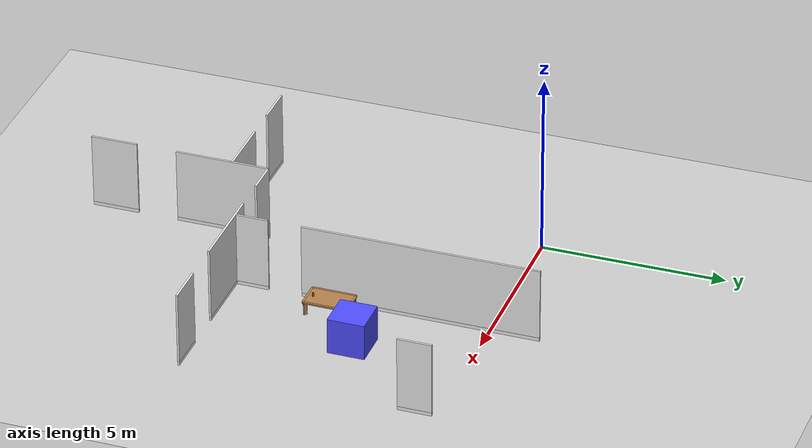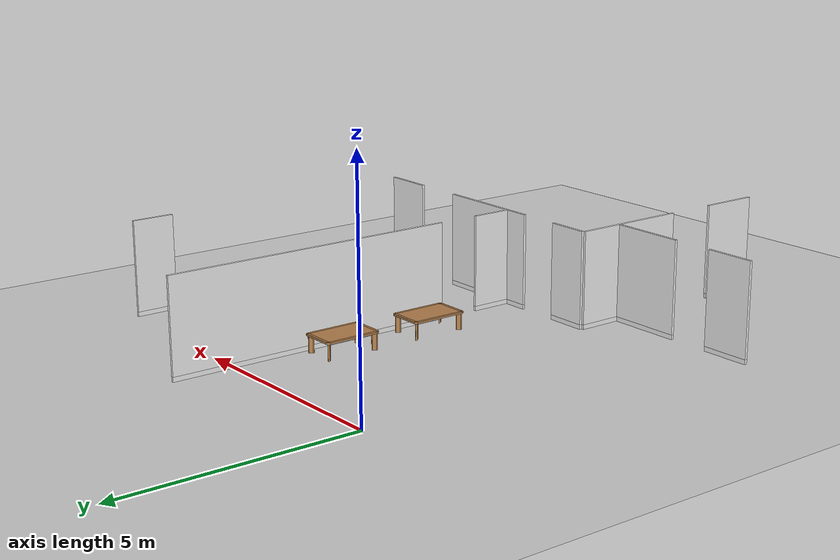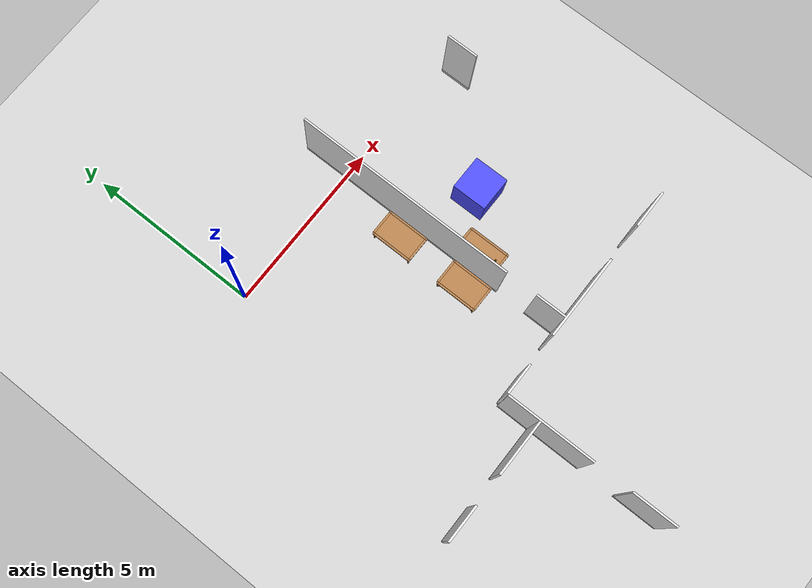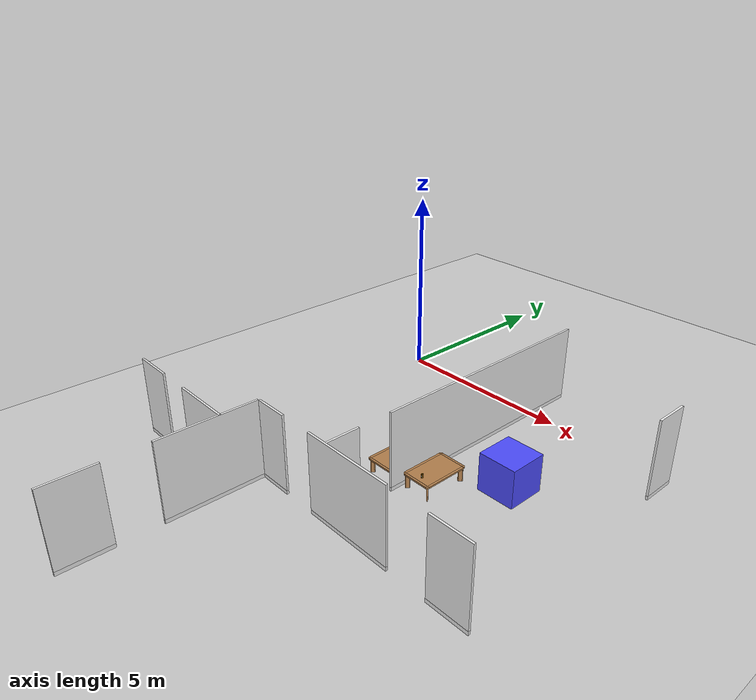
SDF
<sdf version="1.6">
 <world name="default">
  <model name="ground_plane">
   <static>1</static>
   <link name="link">
    <collision name="collision">
     <geometry><plane><normal>0 0 1</normal><size>100 100</size></plane></geometry>
     <surface><friction><ode><mu>100</mu><mu2>50</mu2></ode></friction></surface>
    </collision>
    <visual name="visual">
     <cast_shadows>0</cast_shadows>
     <geometry><plane><normal>0 0 1</normal><size>100 100</size></plane></geometry>
     <material>
      <script><uri>file://media/materials/scripts/gazebo.material</uri><name>Gazebo/Grey</name></script>
     </material>
    </visual>
   </link>
  </model>
  <model name="full_inside_wall">
   <link name="link">
    <inertial>
     <mass>50</mass>
     <inertia><ixx>1</ixx><ixy>0</ixy><ixz>0</ixz><iyy>1</iyy><iyz>0</iyz><izz>1</izz></inertia>
    </inertial>
    <visual name="x05y01_08_bottom_frame">
     <pose>4.075 3.215 0.05 0 -0 0</pose>
     <geometry><box><size>0.055 6.43 0.1</size></box></geometry>
     <material>
      <script><uri>model://base_materials/color/scripts</uri><name>hsr_color/white</name></script>
     </material>
    </visual>
    <collision name="x05y01_08_collision_bottom_frame">
     <pose>4.075 3.215 0.05 0 -0 0</pose>
     <geometry><box><size>0.055 6.43 0.1</size></box></geometry>
    </collision>
    <visual name="x05y01_08_wall">
     <pose>4.075 3.215 1.095 0 -0 0</pose>
     <geometry><box><size>0.055 6.43 1.99</size></box></geometry>
     <material>
      <script>
       <uri>model://base_materials/wall/scripts</uri>
       <uri>model://base_materials/wall/textures</uri>
       <name>wall/white_noise</name>
      </script>
     </material>
    </visual>
    <collision name="x05y01_08_collision_wall">
     <pose>4.075 3.215 1.095 0 -0 0</pose>
     <geometry><box><size>0.055 6.43 1.99</size></box></geometry>
    </collision>
    <visual name="x05y10_bottom_frame">
     <pose>4.075 7.78 0.05 0 -0 0</pose>
     <geometry><box><size>0.055 0.9 0.1</size></box></geometry>
     <material>
      <script><uri>model://base_materials/color/scripts</uri><name>hsr_color/white</name></script>
     </material>
    </visual>
    <collision name="x05y10_collision_bottom_frame">
     <pose>4.075 7.78 0.05 0 -0 0</pose>
     <geometry><box><size>0.055 0.9 0.1</size></box></geometry>
    </collision>
    <visual name="x05y10_wall">
     <pose>4.075 7.78 1.095 0 -0 0</pose>
     <geometry><box><size>0.055 0.9 1.99</size></box></geometry>
     <material>
      <script>
       <uri>model://base_materials/wall/scripts</uri>
       <uri>model://base_materials/wall/textures</uri>
       <name>wall/white_noise</name>
      </script>
     </material>
    </visual>
    <collision name="x05y10_collision_wall">
     <pose>4.075 7.78 1.095 0 -0 0</pose>
     <geometry><box><size>0.055 0.9 1.99</size></box></geometry>
    </collision>
    <visual name="x01_02_y09_bottom_frame">
     <pose>0.55 8.23 0.05 0 -0 1.5708</pose>
     <geometry><box><size>0.055 1.1 0.1</size></box></geometry>
     <material>
      <script><uri>model://base_materials/color/scripts</uri><name>hsr_color/white</name></script>
     </material>
    </visual>
    <collision name="x01_02_y09_collision_bottom_frame">
     <pose>0.55 8.23 0.05 0 -0 1.5708</pose>
     <geometry><box><size>0.055 1.1 0.1</size></box></geometry>
    </collision>
    <visual name="x01_02_y09_wall">
     <pose>0.55 8.23 1.095 0 -0 1.5708</pose>
     <geometry><box><size>0.055 1.1 1.99</size></box></geometry>
     <material>
      <script>
       <uri>model://base_materials/wall/scripts</uri>
       <uri>model://base_materials/wall/textures</uri>
       <name>wall/white_noise</name>
      </script>
     </material>
    </visual>
    <collision name="x01_02_y09_collision_wall">
     <pose>0.55 8.23 1.095 0 -0 1.5708</pose>
     <geometry><box><size>0.055 1.1 1.99</size></box></geometry>
    </collision>
    <visual name="x04_07_y09_bottom_frame">
     <pose>3.42 8.23 0.05 0 -0 1.5708</pose>
     <geometry><box><size>0.055 2.44 0.1</size></box></geometry>
     <material>
      <script><uri>model://base_materials/color/scripts</uri><name>hsr_color/white</name></script>
     </material>
    </visual>
    <collision name="x04_07_y09_collision_bottom_frame">
     <pose>3.42 8.23 0.05 0 -0 1.5708</pose>
     <geometry><box><size>0.055 2.44 0.1</size></box></geometry>
    </collision>
    <visual name="x04_07_y09_wall">
     <pose>3.42 8.23 1.095 0 -0 1.5708</pose>
     <geometry><box><size>0.055 2.44 1.99</size></box></geometry>
     <material>
      <script>
       <uri>model://base_materials/wall/scripts</uri>
       <uri>model://base_materials/wall/textures</uri>
       <name>wall/white_noise</name>
      </script>
     </material>
    </visual>
    <collision name="x04_07_y09_collision_wall">
     <pose>3.42 8.23 1.095 0 -0 1.5708</pose>
     <geometry><box><size>0.055 2.44 1.99</size></box></geometry>
    </collision>
    <visual name="x08y10a_bottom_frame">
     <pose>5.9925 8.23 0.05 0 -0 1.5708</pose>
     <geometry><box><size>0.055 0.9 0.1</size></box></geometry>
     <material>
      <script><uri>model://base_materials/color/scripts</uri><name>hsr_color/white</name></script>
     </material>
    </visual>
    <collision name="x08y10a_collision_bottom_frame">
     <pose>5.9925 8.23 0.05 0 -0 1.5708</pose>
     <geometry><box><size>0.055 0.9 0.1</size></box></geometry>
    </collision>
    <visual name="x08y10a_wall">
     <pose>5.9925 8.23 1.095 0 -0 1.5708</pose>
     <geometry><box><size>0.055 0.9 1.99</size></box></geometry>
     <material>
      <script>
       <uri>model://base_materials/wall/scripts</uri>
       <uri>model://base_materials/wall/textures</uri>
       <name>wall/white_noise</name>
      </script>
     </material>
    </visual>
    <collision name="x08y10a_collision_wall">
     <pose>5.9925 8.23 1.095 0 -0 1.5708</pose>
     <geometry><box><size>0.055 0.9 1.99</size></box></geometry>
    </collision>
    <visual name="x08y10a_bottom_frame">
     <pose>5.9925 8.23 0.05 0 -0 1.5708</pose>
     <geometry><box><size>0.055 0.9 0.1</size></box></geometry>
     <material>
      <script><uri>model://base_materials/color/scripts</uri><name>hsr_color/white</name></script>
     </material>
    </visual>
    <collision name="x08y10a_collision_bottom_frame">
     <pose>5.9925 8.23 0.05 0 -0 1.5708</pose>
     <geometry><box><size>0.055 0.9 0.1</size></box></geometry>
    </collision>
    <visual name="x08y10a_wall">
     <pose>5.9925 8.23 1.095 0 -0 1.5708</pose>
     <geometry><box><size>0.055 0.9 1.99</size></box></geometry>
     <material>
      <script>
       <uri>model://base_materials/wall/scripts</uri>
       <uri>model://base_materials/wall/textures</uri>
       <name>wall/white_noise</name>
      </script>
     </material>
    </visual>
    <collision name="x08y10a_collision_wall">
     <pose>5.9925 8.23 1.095 0 -0 1.5708</pose>
     <geometry><box><size>0.055 0.9 1.99</size></box></geometry>
    </collision>
    <visual name="x08y14_15_bottom_frame">
     <pose>6.47 12.54 0.05 0 -0 0</pose>
     <geometry><box><size>0.055 1.28 0.1</size></box></geometry>
     <material>
      <script><uri>model://base_materials/color/scripts</uri><name>hsr_color/white</name></script>
     </material>
    </visual>
    <collision name="x08y14_15_collision_bottom_frame">
     <pose>6.47 12.54 0.05 0 -0 0</pose>
     <geometry><box><size>0.055 1.28 0.1</size></box></geometry>
    </collision>
    <visual name="x08y14_15_wall">
     <pose>6.47 12.54 1.095 0 -0 0</pose>
     <geometry><box><size>0.055 1.28 1.99</size></box></geometry>
     <material>
      <script>
       <uri>model://base_materials/wall/scripts</uri>
       <uri>model://base_materials/wall/textures</uri>
       <name>wall/white_noise</name>
      </script>
     </material>
    </visual>
    <collision name="x08y14_15_collision_wall">
     <pose>6.47 12.54 1.095 0 -0 0</pose>
     <geometry><box><size>0.055 1.28 1.99</size></box></geometry>
    </collision>
    <visual name="x08y10b_12_bottom_frame">
     <pose>6.47 9.52875 0.05 0 -0 0</pose>
     <geometry><box><size>0.055 2.5425 0.1</size></box></geometry>
     <material>
      <script><uri>model://base_materials/color/scripts</uri><name>hsr_color/white</name></script>
     </material>
    </visual>
    <collision name="x08y10b_12_collision_bottom_frame">
     <pose>6.47 9.52875 0.05 0 -0 0</pose>
     <geometry><box><size>0.055 2.5425 0.1</size></box></geometry>
    </collision>
    <visual name="x08y10b_12_wall">
     <pose>6.47 9.52875 1.095 0 -0 0</pose>
     <geometry><box><size>0.055 2.5425 1.99</size></box></geometry>
     <material>
      <script>
       <uri>model://base_materials/wall/scripts</uri>
       <uri>model://base_materials/wall/textures</uri>
       <name>wall/white_noise</name>
      </script>
     </material>
    </visual>
    <collision name="x08y10b_12_collision_wall">
     <pose>6.47 9.52875 1.095 0 -0 0</pose>
     <geometry><box><size>0.055 2.5425 1.99</size></box></geometry>
    </collision>
    <visual name="x08_09y11b_bottom_frame">
     <pose>7.284 9.23 0.05 0 -0 1.5708</pose>
     <geometry><box><size>0.055 1.632 0.1</size></box></geometry>
     <material>
      <script><uri>model://base_materials/color/scripts</uri><name>hsr_color/white</name></script>
     </material>
    </visual>
    <collision name="x08_09y11b_collision_bottom_frame">
     <pose>7.284 9.23 0.05 0 -0 1.5708</pose>
     <geometry><box><size>0.055 1.632 0.1</size></box></geometry>
    </collision>
    <visual name="x08_09y11b_wall">
     <pose>7.284 9.23 1.095 0 -0 1.5708</pose>
     <geometry><box><size>0.055 1.632 1.99</size></box></geometry>
     <material>
      <script>
       <uri>model://base_materials/wall/scripts</uri>
       <uri>model://base_materials/wall/textures</uri>
       <name>wall/white_noise</name>
      </script>
     </material>
    </visual>
    <collision name="x08_09y11b_collision_wall">
     <pose>7.284 9.23 1.095 0 -0 1.5708</pose>
     <geometry><box><size>0.055 1.632 1.99</size></box></geometry>
    </collision>
    <visual name="x11_12y11_bottom_frame">
     <pose>9.5375 9.23 0.05 0 -0 1.5708</pose>
     <geometry><box><size>0.055 1.075 0.1</size></box></geometry>
     <material>
      <script><uri>model://base_materials/color/scripts</uri><name>hsr_color/white</name></script>
     </material>
    </visual>
    <collision name="x11_12y11_collision_bottom_frame">
     <pose>9.5375 9.23 0.05 0 -0 1.5708</pose>
     <geometry><box><size>0.055 1.075 0.1</size></box></geometry>
    </collision>
    <visual name="x11_12y11_wall">
     <pose>9.5375 9.23 1.095 0 -0 1.5708</pose>
     <geometry><box><size>0.055 1.075 1.99</size></box></geometry>
     <material>
      <script>
       <uri>model://base_materials/wall/scripts</uri>
       <uri>model://base_materials/wall/textures</uri>
       <name>wall/white_noise</name>
      </script>
     </material>
    </visual>
    <collision name="x11_12y11_collision_wall">
     <pose>9.5375 9.23 1.095 0 -0 1.5708</pose>
     <geometry><box><size>0.055 1.075 1.99</size></box></geometry>
    </collision>
    <velocity_decay><linear>0</linear><angular>0</angular></velocity_decay>
   </link>
   <static>1</static>
   <pose>8.33769 1.33864 0 0 -0 3.14132</pose>
  </model>
  <model name="static_box_2">
   <link name="link">
    <inertial>
     <mass>100</mass>
     <inertia>
      <ixx>0.166667</ixx>
      <ixy>0</ixy>
      <ixz>0</ixz>
      <iyy>0.166667</iyy>
      <iyz>0</iyz>
      <izz>0.166667</izz>
     </inertia>
    </inertial>
    <visual name="visual">
     <geometry><box><size>1 1 1</size></box></geometry>
     <material>
      <script><name>Gazebo/Grey</name><uri>file://media/materials/scripts/gazebo.material</uri></script>
      <ambient>0.3 0.3 1 1</ambient>
      <diffuse>0.7 0.7 0.7 1</diffuse>
      <specular>0.01 0.01 0.01 1</specular>
      <emissive>0 0 0 1</emissive>
      <shader type="vertex"><normal_map>__default__</normal_map></shader>
     </material>
    </visual>
    <collision name="collision">
     <geometry><box><size>1 1 1</size></box></geometry>
     <surface>
      <friction>
       <ode><mu>1</mu><mu2>1</mu2><fdir1>0 0 0</fdir1><slip1>0</slip1><slip2>0</slip2></ode>
       <torsional>
        <coefficient>1</coefficient>
        <patch_radius>0</patch_radius>
        <surface_radius>0</surface_radius>
        <use_patch_radius>1</use_patch_radius>
        <ode><slip>0</slip></ode>
       </torsional>
      </friction>
      <bounce><restitution_coefficient>0</restitution_coefficient><threshold>1e+06</threshold></bounce>
      <contact>
       <collide_without_contact>0</collide_without_contact>
       <collide_without_contact_bitmask>1</collide_without_contact_bitmask>
       <collide_bitmask>1</collide_bitmask>
       <ode>
        <soft_cfm>0</soft_cfm>
        <soft_erp>0.2</soft_erp>
        <kp>1e+13</kp>
        <kd>1</kd>
        <max_vel>0.01</max_vel>
        <min_depth>0</min_depth>
       </ode>
       <bullet>
        <split_impulse>1</split_impulse>
        <split_impulse_penetration_threshold>-0.01</split_impulse_penetration_threshold>
        <soft_cfm>0</soft_cfm>
        <soft_erp>0.2</soft_erp>
        <kp>1e+13</kp>
        <kd>1</kd>
       </bullet>
      </contact>
     </surface>
    </collision>
   </link>
   <static>0</static>
   <pose>6.05367 -3.06141 0.499993 -0 -9e-06 0.001268</pose>
  </model>
  <model name="full_wall_55_920_2090">
   <link name="link">
    <inertial>
     <mass>50</mass>
     <inertia><ixx>1</ixx><ixy>0</ixy><ixz>0</ixz><iyy>1</iyy><iyz>0</iyz><izz>1</izz></inertia>
    </inertial>
    <visual name="bottom_frame">
     <pose>0 0 0.05 0 -0 0</pose>
     <geometry><box><size>0.055 0.92 0.1</size></box></geometry>
     <material>
      <script><uri>model://base_materials/color/scripts</uri><name>hsr_color/white</name></script>
     </material>
    </visual>
    <collision name="collision_bottom_frame">
     <pose>0 0 0.05 0 -0 0</pose>
     <geometry><box><size>0.055 0.92 0.1</size></box></geometry>
    </collision>
    <visual name="wall">
     <pose>0 0 1.095 0 -0 0</pose>
     <geometry><box><size>0.055 0.92 1.99</size></box></geometry>
     <material>
      <script>
       <uri>model://base_materials/wall/scripts</uri>
       <uri>model://base_materials/wall/textures</uri>
       <name>wall/white_noise</name>
      </script>
     </material>
    </visual>
    <collision name="collision_wall">
     <pose>0 0 1.095 0 -0 0</pose>
     <geometry><box><size>0.055 0.92 1.99</size></box></geometry>
    </collision>
    <velocity_decay><linear>0</linear><angular>0</angular></velocity_decay>
   </link>
   <static>1</static>
   <pose>8.36232 -0.582065 0 0 -0 0</pose>
  </model>
  <model name="kitchen_lowtable_clone_0">
   <link name="link">
    <inertial>
     <mass>10</mass>
     <inertia><ixx>1</ixx><ixy>0</ixy><ixz>0</ixz><iyy>1</iyy><iyz>0</iyz><izz>1</izz></inertia>
    </inertial>
    <visual name="center_board">
     <pose>0 0 0.38 0 -0 0</pose>
     <geometry><box><size>0.68 1.13 0.04</size></box></geometry>
     <material>
      <script><uri>model://base_materials/wood/scripts/wood.material</uri><name>base_materials/wood</name></script>
     </material>
    </visual>
    <collision name="collision_center_board">
     <pose>0 0 0.38 0 -0 0</pose>
     <geometry><box><size>0.68 1.13 0.04</size></box></geometry>
    </collision>
    <visual name="front_board">
     <pose>0.37 0 0.38 0 -0 0</pose>
     <geometry><box><size>0.06 1.13 0.04</size></box></geometry>
     <material>
      <script><uri>model://base_materials/wood/scripts/wood.material</uri><name>base_materials/wood</name></script>
     </material>
    </visual>
    <collision name="collision_front_board">
     <pose>0.37 0 0.38 0 -0 0</pose>
     <geometry><box><size>0.06 1.13 0.04</size></box></geometry>
    </collision>
    <visual name="back_board">
     <pose>-0.37 0 0.38 0 -0 0</pose>
     <geometry><box><size>0.06 1.13 0.04</size></box></geometry>
     <material>
      <script><uri>model://base_materials/wood/scripts/wood.material</uri><name>base_materials/wood</name></script>
     </material>
    </visual>
    <collision name="collision_back_board">
     <pose>-0.37 0 0.38 0 -0 0</pose>
     <geometry><box><size>0.06 1.13 0.04</size></box></geometry>
    </collision>
    <visual name="right_board">
     <pose>0 0.595 0.38 0 -0 0</pose>
     <geometry><box><size>0.68 0.06 0.04</size></box></geometry>
     <material>
      <script><uri>model://base_materials/wood/scripts/wood.material</uri><name>base_materials/wood</name></script>
     </material>
    </visual>
    <collision name="collision_right_board">
     <pose>0 0.595 0.38 0 -0 0</pose>
     <geometry><box><size>0.68 0.06 0.04</size></box></geometry>
    </collision>
    <visual name="left_board">
     <pose>0 -0.595 0.38 0 -0 0</pose>
     <geometry><box><size>0.68 0.06 0.04</size></box></geometry>
     <material>
      <script><uri>model://base_materials/wood/scripts/wood.material</uri><name>base_materials/wood</name></script>
     </material>
    </visual>
    <collision name="collision_left_board">
     <pose>0 -0.595 0.38 0 -0 0</pose>
     <geometry><box><size>0.68 0.06 0.04</size></box></geometry>
    </collision>
    <visual name="front_right_corner_board">
     <pose>0.34 0.565 0.38 0 -0 0</pose>
     <geometry><cylinder><radius>0.06</radius><length>0.039</length></cylinder></geometry>
     <material>
      <script><uri>model://base_materials/wood/scripts/wood.material</uri><name>base_materials/wood</name></script>
     </material>
    </visual>
    <collision name="collision_front_right_corner_board">
     <pose>0.34 0.565 0.38 0 -0 0</pose>
     <geometry><cylinder><radius>0.06</radius><length>0.039</length></cylinder></geometry>
    </collision>
    <visual name="front_left_corner_board">
     <pose>0.34 -0.565 0.38 0 -0 0</pose>
     <geometry><cylinder><radius>0.06</radius><length>0.039</length></cylinder></geometry>
     <material>
      <script><uri>model://base_materials/wood/scripts/wood.material</uri><name>base_materials/wood</name></script>
     </material>
    </visual>
    <collision name="collision_front_left_corner_board">
     <pose>0.34 -0.565 0.38 0 -0 0</pose>
     <geometry><cylinder><radius>0.06</radius><length>0.039</length></cylinder></geometry>
    </collision>
    <visual name="front_back_right_corner_board">
     <pose>-0.34 0.565 0.38 0 -0 0</pose>
     <geometry><cylinder><radius>0.06</radius><length>0.039</length></cylinder></geometry>
     <material>
      <script><uri>model://base_materials/wood/scripts/wood.material</uri><name>base_materials/wood</name></script>
     </material>
    </visual>
    <collision name="collision_back_right_corner_board">
     <pose>-0.34 0.565 0.38 0 -0 0</pose>
     <geometry><cylinder><radius>0.06</radius><length>0.039</length></cylinder></geometry>
    </collision>
    <visual name="front_back_left_corner_board">
     <pose>-0.34 -0.565 0.38 0 -0 0</pose>
     <geometry><cylinder><radius>0.06</radius><length>0.039</length></cylinder></geometry>
     <material>
      <script><uri>model://base_materials/wood/scripts/wood.material</uri><name>base_materials/wood</name></script>
     </material>
    </visual>
    <collision name="collision_back_left_corner_board">
     <pose>-0.34 -0.565 0.38 0 -0 0</pose>
     <geometry><cylinder><radius>0.06</radius><length>0.039</length></cylinder></geometry>
    </collision>
    <visual name="front_left_corner_frame1">
     <pose>0.345858 -0.57086 0.18 0 -0 0</pose>
     <geometry><cylinder><radius>0.02</radius><length>0.36</length></cylinder></geometry>
     <material>
      <script><uri>model://base_materials/wood/scripts/wood.material</uri><name>base_materials/wood</name></script>
     </material>
    </visual>
    <collision name="collision_front_left_corner_frame1">
     <pose>0.345858 -0.57086 0.18 0 -0 0</pose>
     <geometry><cylinder><radius>0.02</radius><length>0.36</length></cylinder></geometry>
    </collision>
    <visual name="front_left_corner_frame2">
     <pose>0.317574 -0.54257 0.18 0 -0 0.7854</pose>
     <geometry><box><size>0.04 0.08 0.36</size></box></geometry>
     <material>
      <script><uri>model://base_materials/wood/scripts/wood.material</uri><name>base_materials/wood</name></script>
     </material>
    </visual>
    <collision name="collision_front_left_corner_frame2">
     <pose>0.317574 -0.54257 0.18 0 -0 0.7854</pose>
     <geometry><box><size>0.04 0.08 0.36</size></box></geometry>
    </collision>
    <visual name="front_left_corner_frame3">
     <pose>0.289289 -0.51429 0.18 0 -0 0</pose>
     <geometry><cylinder><radius>0.02</radius><length>0.36</length></cylinder></geometry>
     <material>
      <script><uri>model://base_materials/wood/scripts/wood.material</uri><name>base_materials/wood</name></script>
     </material>
    </visual>
    <collision name="collision_front_left_corner_frame3">
     <pose>0.289289 -0.51429 0.18 0 -0 0</pose>
     <geometry><cylinder><radius>0.02</radius><length>0.36</length></cylinder></geometry>
    </collision>
    <visual name="front_right_corner_frame1">
     <pose>0.345858 0.57086 0.18 0 -0 0</pose>
     <geometry><cylinder><radius>0.02</radius><length>0.36</length></cylinder></geometry>
     <material>
      <script><uri>model://base_materials/wood/scripts/wood.material</uri><name>base_materials/wood</name></script>
     </material>
    </visual>
    <collision name="collision_front_right_corner_frame1">
     <pose>0.345858 0.57086 0.18 0 -0 0</pose>
     <geometry><cylinder><radius>0.02</radius><length>0.36</length></cylinder></geometry>
    </collision>
    <visual name="front_right_corner_frame2">
     <pose>0.317574 0.54257 0.18 0 0 -0.7854</pose>
     <geometry><box><size>0.04 0.08 0.36</size></box></geometry>
     <material>
      <script><uri>model://base_materials/wood/scripts/wood.material</uri><name>base_materials/wood</name></script>
     </material>
    </visual>
    <collision name="collision_front_right_corner_frame2">
     <pose>0.317574 0.54257 0.18 0 0 -0.7854</pose>
     <geometry><box><size>0.04 0.08 0.36</size></box></geometry>
    </collision>
    <visual name="front_right_corner_frame3">
     <pose>0.289289 0.51429 0.18 0 -0 0</pose>
     <geometry><cylinder><radius>0.02</radius><length>0.36</length></cylinder></geometry>
     <material>
      <script><uri>model://base_materials/wood/scripts/wood.material</uri><name>base_materials/wood</name></script>
     </material>
    </visual>
    <collision name="collision_front_right_corner_frame3">
     <pose>0.289289 0.51429 0.18 0 -0 0</pose>
     <geometry><cylinder><radius>0.02</radius><length>0.36</length></cylinder></geometry>
    </collision>
    <visual name="back_left_corner_frame1">
     <pose>-0.345858 -0.57086 0.18 0 -0 0</pose>
     <geometry><cylinder><radius>0.02</radius><length>0.36</length></cylinder></geometry>
     <material>
      <script><uri>model://base_materials/wood/scripts/wood.material</uri><name>base_materials/wood</name></script>
     </material>
    </visual>
    <collision name="collision_back_left_corner_frame1">
     <pose>-0.345858 -0.57086 0.18 0 -0 0</pose>
     <geometry><cylinder><radius>0.02</radius><length>0.36</length></cylinder></geometry>
    </collision>
    <visual name="back_left_corner_frame2">
     <pose>-0.317574 -0.54257 0.18 0 0 -0.7854</pose>
     <geometry><box><size>0.04 0.08 0.36</size></box></geometry>
     <material>
      <script><uri>model://base_materials/wood/scripts/wood.material</uri><name>base_materials/wood</name></script>
     </material>
    </visual>
    <collision name="collision_back_left_corner_frame2">
     <pose>-0.317574 -0.54257 0.18 0 0 -0.7854</pose>
     <geometry><box><size>0.04 0.08 0.36</size></box></geometry>
    </collision>
    <visual name="back_left_corner_frame3">
     <pose>-0.289289 -0.51429 0.18 0 -0 0</pose>
     <geometry><cylinder><radius>0.02</radius><length>0.36</length></cylinder></geometry>
     <material>
      <script><uri>model://base_materials/wood/scripts/wood.material</uri><name>base_materials/wood</name></script>
     </material>
    </visual>
    <collision name="collision_back_left_corner_frame3">
     <pose>-0.289289 -0.51429 0.18 0 -0 0</pose>
     <geometry><cylinder><radius>0.02</radius><length>0.36</length></cylinder></geometry>
    </collision>
    <visual name="back_right_corner_frame1">
     <pose>-0.345858 0.57086 0.18 0 -0 0</pose>
     <geometry><cylinder><radius>0.02</radius><length>0.36</length></cylinder></geometry>
     <material>
      <script><uri>model://base_materials/wood/scripts/wood.material</uri><name>base_materials/wood</name></script>
     </material>
    </visual>
    <collision name="collision_back_right_corner_frame1">
     <pose>-0.345858 0.57086 0.18 0 -0 0</pose>
     <geometry><cylinder><radius>0.02</radius><length>0.36</length></cylinder></geometry>
    </collision>
    <visual name="back_right_corner_frame2">
     <pose>-0.317574 0.54257 0.18 0 -0 0.7854</pose>
     <geometry><box><size>0.04 0.08 0.36</size></box></geometry>
     <material>
      <script><uri>model://base_materials/wood/scripts/wood.material</uri><name>base_materials/wood</name></script>
     </material>
    </visual>
    <collision name="collision_back_right_corner_frame2">
     <pose>-0.317574 0.54257 0.18 0 -0 0.7854</pose>
     <geometry><box><size>0.04 0.08 0.36</size></box></geometry>
    </collision>
    <visual name="back_right_corner_frame3">
     <pose>-0.289289 0.51429 0.18 0 -0 0</pose>
     <geometry><cylinder><radius>0.02</radius><length>0.36</length></cylinder></geometry>
     <material>
      <script><uri>model://base_materials/wood/scripts/wood.material</uri><name>base_materials/wood</name></script>
     </material>
    </visual>
    <collision name="collision_back_right_corner_frame3">
     <pose>-0.289289 0.51429 0.18 0 -0 0</pose>
     <geometry><cylinder><radius>0.02</radius><length>0.36</length></cylinder></geometry>
    </collision>
    <velocity_decay><linear>0</linear><angular>0</angular></velocity_decay>
   </link>
   <static>1</static>
   <pose>3.75431 -4.34988 0 0 -0 0</pose>
  </model>
  <model name="kitchen_lowtable_clone_6">
   <link name="link">
    <inertial>
     <mass>10</mass>
     <inertia><ixx>1</ixx><ixy>0</ixy><ixz>0</ixz><iyy>1</iyy><iyz>0</iyz><izz>1</izz></inertia>
    </inertial>
    <visual name="center_board">
     <pose>0 0 0.38 0 -0 0</pose>
     <geometry><box><size>0.68 1.13 0.04</size></box></geometry>
     <material>
      <script><uri>model://base_materials/wood/scripts/wood.material</uri><name>base_materials/wood</name></script>
     </material>
    </visual>
    <collision name="collision_center_board">
     <pose>0 0 0.38 0 -0 0</pose>
     <geometry><box><size>0.68 1.13 0.04</size></box></geometry>
    </collision>
    <visual name="front_board">
     <pose>0.37 0 0.38 0 -0 0</pose>
     <geometry><box><size>0.06 1.13 0.04</size></box></geometry>
     <material>
      <script><uri>model://base_materials/wood/scripts/wood.material</uri><name>base_materials/wood</name></script>
     </material>
    </visual>
    <collision name="collision_front_board">
     <pose>0.37 0 0.38 0 -0 0</pose>
     <geometry><box><size>0.06 1.13 0.04</size></box></geometry>
    </collision>
    <visual name="back_board">
     <pose>-0.37 0 0.38 0 -0 0</pose>
     <geometry><box><size>0.06 1.13 0.04</size></box></geometry>
     <material>
      <script><uri>model://base_materials/wood/scripts/wood.material</uri><name>base_materials/wood</name></script>
     </material>
    </visual>
    <collision name="collision_back_board">
     <pose>-0.37 0 0.38 0 -0 0</pose>
     <geometry><box><size>0.06 1.13 0.04</size></box></geometry>
    </collision>
    <visual name="right_board">
     <pose>0 0.595 0.38 0 -0 0</pose>
     <geometry><box><size>0.68 0.06 0.04</size></box></geometry>
     <material>
      <script><uri>model://base_materials/wood/scripts/wood.material</uri><name>base_materials/wood</name></script>
     </material>
    </visual>
    <collision name="collision_right_board">
     <pose>0 0.595 0.38 0 -0 0</pose>
     <geometry><box><size>0.68 0.06 0.04</size></box></geometry>
    </collision>
    <visual name="left_board">
     <pose>0 -0.595 0.38 0 -0 0</pose>
     <geometry><box><size>0.68 0.06 0.04</size></box></geometry>
     <material>
      <script><uri>model://base_materials/wood/scripts/wood.material</uri><name>base_materials/wood</name></script>
     </material>
    </visual>
    <collision name="collision_left_board">
     <pose>0 -0.595 0.38 0 -0 0</pose>
     <geometry><box><size>0.68 0.06 0.04</size></box></geometry>
    </collision>
    <visual name="front_right_corner_board">
     <pose>0.34 0.565 0.38 0 -0 0</pose>
     <geometry><cylinder><radius>0.06</radius><length>0.039</length></cylinder></geometry>
     <material>
      <script><uri>model://base_materials/wood/scripts/wood.material</uri><name>base_materials/wood</name></script>
     </material>
    </visual>
    <collision name="collision_front_right_corner_board">
     <pose>0.34 0.565 0.38 0 -0 0</pose>
     <geometry><cylinder><radius>0.06</radius><length>0.039</length></cylinder></geometry>
    </collision>
    <visual name="front_left_corner_board">
     <pose>0.34 -0.565 0.38 0 -0 0</pose>
     <geometry><cylinder><radius>0.06</radius><length>0.039</length></cylinder></geometry>
     <material>
      <script><uri>model://base_materials/wood/scripts/wood.material</uri><name>base_materials/wood</name></script>
     </material>
    </visual>
    <collision name="collision_front_left_corner_board">
     <pose>0.34 -0.565 0.38 0 -0 0</pose>
     <geometry><cylinder><radius>0.06</radius><length>0.039</length></cylinder></geometry>
    </collision>
    <visual name="front_back_right_corner_board">
     <pose>-0.34 0.565 0.38 0 -0 0</pose>
     <geometry><cylinder><radius>0.06</radius><length>0.039</length></cylinder></geometry>
     <material>
      <script><uri>model://base_materials/wood/scripts/wood.material</uri><name>base_materials/wood</name></script>
     </material>
    </visual>
    <collision name="collision_back_right_corner_board">
     <pose>-0.34 0.565 0.38 0 -0 0</pose>
     <geometry><cylinder><radius>0.06</radius><length>0.039</length></cylinder></geometry>
    </collision>
    <visual name="front_back_left_corner_board">
     <pose>-0.34 -0.565 0.38 0 -0 0</pose>
     <geometry><cylinder><radius>0.06</radius><length>0.039</length></cylinder></geometry>
     <material>
      <script><uri>model://base_materials/wood/scripts/wood.material</uri><name>base_materials/wood</name></script>
     </material>
    </visual>
    <collision name="collision_back_left_corner_board">
     <pose>-0.34 -0.565 0.38 0 -0 0</pose>
     <geometry><cylinder><radius>0.06</radius><length>0.039</length></cylinder></geometry>
    </collision>
    <visual name="front_left_corner_frame1">
     <pose>0.345858 -0.57086 0.18 0 -0 0</pose>
     <geometry><cylinder><radius>0.02</radius><length>0.36</length></cylinder></geometry>
     <material>
      <script><uri>model://base_materials/wood/scripts/wood.material</uri><name>base_materials/wood</name></script>
     </material>
    </visual>
    <collision name="collision_front_left_corner_frame1">
     <pose>0.345858 -0.57086 0.18 0 -0 0</pose>
     <geometry><cylinder><radius>0.02</radius><length>0.36</length></cylinder></geometry>
    </collision>
    <visual name="front_left_corner_frame2">
     <pose>0.317574 -0.54257 0.18 0 -0 0.7854</pose>
     <geometry><box><size>0.04 0.08 0.36</size></box></geometry>
     <material>
      <script><uri>model://base_materials/wood/scripts/wood.material</uri><name>base_materials/wood</name></script>
     </material>
    </visual>
    <collision name="collision_front_left_corner_frame2">
     <pose>0.317574 -0.54257 0.18 0 -0 0.7854</pose>
     <geometry><box><size>0.04 0.08 0.36</size></box></geometry>
    </collision>
    <visual name="front_left_corner_frame3">
     <pose>0.289289 -0.51429 0.18 0 -0 0</pose>
     <geometry><cylinder><radius>0.02</radius><length>0.36</length></cylinder></geometry>
     <material>
      <script><uri>model://base_materials/wood/scripts/wood.material</uri><name>base_materials/wood</name></script>
     </material>
    </visual>
    <collision name="collision_front_left_corner_frame3">
     <pose>0.289289 -0.51429 0.18 0 -0 0</pose>
     <geometry><cylinder><radius>0.02</radius><length>0.36</length></cylinder></geometry>
    </collision>
    <visual name="front_right_corner_frame1">
     <pose>0.345858 0.57086 0.18 0 -0 0</pose>
     <geometry><cylinder><radius>0.02</radius><length>0.36</length></cylinder></geometry>
     <material>
      <script><uri>model://base_materials/wood/scripts/wood.material</uri><name>base_materials/wood</name></script>
     </material>
    </visual>
    <collision name="collision_front_right_corner_frame1">
     <pose>0.345858 0.57086 0.18 0 -0 0</pose>
     <geometry><cylinder><radius>0.02</radius><length>0.36</length></cylinder></geometry>
    </collision>
    <visual name="front_right_corner_frame2">
     <pose>0.317574 0.54257 0.18 0 0 -0.7854</pose>
     <geometry><box><size>0.04 0.08 0.36</size></box></geometry>
     <material>
      <script><uri>model://base_materials/wood/scripts/wood.material</uri><name>base_materials/wood</name></script>
     </material>
    </visual>
    <collision name="collision_front_right_corner_frame2">
     <pose>0.317574 0.54257 0.18 0 0 -0.7854</pose>
     <geometry><box><size>0.04 0.08 0.36</size></box></geometry>
    </collision>
    <visual name="front_right_corner_frame3">
     <pose>0.289289 0.51429 0.18 0 -0 0</pose>
     <geometry><cylinder><radius>0.02</radius><length>0.36</length></cylinder></geometry>
     <material>
      <script><uri>model://base_materials/wood/scripts/wood.material</uri><name>base_materials/wood</name></script>
     </material>
    </visual>
    <collision name="collision_front_right_corner_frame3">
     <pose>0.289289 0.51429 0.18 0 -0 0</pose>
     <geometry><cylinder><radius>0.02</radius><length>0.36</length></cylinder></geometry>
    </collision>
    <visual name="back_left_corner_frame1">
     <pose>-0.345858 -0.57086 0.18 0 -0 0</pose>
     <geometry><cylinder><radius>0.02</radius><length>0.36</length></cylinder></geometry>
     <material>
      <script><uri>model://base_materials/wood/scripts/wood.material</uri><name>base_materials/wood</name></script>
     </material>
    </visual>
    <collision name="collision_back_left_corner_frame1">
     <pose>-0.345858 -0.57086 0.18 0 -0 0</pose>
     <geometry><cylinder><radius>0.02</radius><length>0.36</length></cylinder></geometry>
    </collision>
    <visual name="back_left_corner_frame2">
     <pose>-0.317574 -0.54257 0.18 0 0 -0.7854</pose>
     <geometry><box><size>0.04 0.08 0.36</size></box></geometry>
     <material>
      <script><uri>model://base_materials/wood/scripts/wood.material</uri><name>base_materials/wood</name></script>
     </material>
    </visual>
    <collision name="collision_back_left_corner_frame2">
     <pose>-0.317574 -0.54257 0.18 0 0 -0.7854</pose>
     <geometry><box><size>0.04 0.08 0.36</size></box></geometry>
    </collision>
    <visual name="back_left_corner_frame3">
     <pose>-0.289289 -0.51429 0.18 0 -0 0</pose>
     <geometry><cylinder><radius>0.02</radius><length>0.36</length></cylinder></geometry>
     <material>
      <script><uri>model://base_materials/wood/scripts/wood.material</uri><name>base_materials/wood</name></script>
     </material>
    </visual>
    <collision name="collision_back_left_corner_frame3">
     <pose>-0.289289 -0.51429 0.18 0 -0 0</pose>
     <geometry><cylinder><radius>0.02</radius><length>0.36</length></cylinder></geometry>
    </collision>
    <visual name="back_right_corner_frame1">
     <pose>-0.345858 0.57086 0.18 0 -0 0</pose>
     <geometry><cylinder><radius>0.02</radius><length>0.36</length></cylinder></geometry>
     <material>
      <script><uri>model://base_materials/wood/scripts/wood.material</uri><name>base_materials/wood</name></script>
     </material>
    </visual>
    <collision name="collision_back_right_corner_frame1">
     <pose>-0.345858 0.57086 0.18 0 -0 0</pose>
     <geometry><cylinder><radius>0.02</radius><length>0.36</length></cylinder></geometry>
    </collision>
    <visual name="back_right_corner_frame2">
     <pose>-0.317574 0.54257 0.18 0 -0 0.7854</pose>
     <geometry><box><size>0.04 0.08 0.36</size></box></geometry>
     <material>
      <script><uri>model://base_materials/wood/scripts/wood.material</uri><name>base_materials/wood</name></script>
     </material>
    </visual>
    <collision name="collision_back_right_corner_frame2">
     <pose>-0.317574 0.54257 0.18 0 -0 0.7854</pose>
     <geometry><box><size>0.04 0.08 0.36</size></box></geometry>
    </collision>
    <visual name="back_right_corner_frame3">
     <pose>-0.289289 0.51429 0.18 0 -0 0</pose>
     <geometry><cylinder><radius>0.02</radius><length>0.36</length></cylinder></geometry>
     <material>
      <script><uri>model://base_materials/wood/scripts/wood.material</uri><name>base_materials/wood</name></script>
     </material>
    </visual>
    <collision name="collision_back_right_corner_frame3">
     <pose>-0.289289 0.51429 0.18 0 -0 0</pose>
     <geometry><cylinder><radius>0.02</radius><length>0.36</length></cylinder></geometry>
    </collision>
    <velocity_decay><linear>0</linear><angular>0</angular></velocity_decay>
   </link>
   <static>1</static>
   <pose>4.74522 -4.15728 0 0 -0 0</pose>
  </model>
  <model name="kitchen_lowtable_clone_7">
   <link name="link">
    <inertial>
     <mass>10</mass>
     <inertia><ixx>1</ixx><ixy>0</ixy><ixz>0</ixz><iyy>1</iyy><iyz>0</iyz><izz>1</izz></inertia>
    </inertial>
    <visual name="center_board">
     <pose>0 0 0.38 0 -0 0</pose>
     <geometry><box><size>0.68 1.13 0.04</size></box></geometry>
     <material>
      <script><uri>model://base_materials/wood/scripts/wood.material</uri><name>base_materials/wood</name></script>
     </material>
    </visual>
    <collision name="collision_center_board">
     <pose>0 0 0.38 0 -0 0</pose>
     <geometry><box><size>0.68 1.13 0.04</size></box></geometry>
    </collision>
    <visual name="front_board">
     <pose>0.37 0 0.38 0 -0 0</pose>
     <geometry><box><size>0.06 1.13 0.04</size></box></geometry>
     <material>
      <script><uri>model://base_materials/wood/scripts/wood.material</uri><name>base_materials/wood</name></script>
     </material>
    </visual>
    <collision name="collision_front_board">
     <pose>0.37 0 0.38 0 -0 0</pose>
     <geometry><box><size>0.06 1.13 0.04</size></box></geometry>
    </collision>
    <visual name="back_board">
     <pose>-0.37 0 0.38 0 -0 0</pose>
     <geometry><box><size>0.06 1.13 0.04</size></box></geometry>
     <material>
      <script><uri>model://base_materials/wood/scripts/wood.material</uri><name>base_materials/wood</name></script>
     </material>
    </visual>
    <collision name="collision_back_board">
     <pose>-0.37 0 0.38 0 -0 0</pose>
     <geometry><box><size>0.06 1.13 0.04</size></box></geometry>
    </collision>
    <visual name="right_board">
     <pose>0 0.595 0.38 0 -0 0</pose>
     <geometry><box><size>0.68 0.06 0.04</size></box></geometry>
     <material>
      <script><uri>model://base_materials/wood/scripts/wood.material</uri><name>base_materials/wood</name></script>
     </material>
    </visual>
    <collision name="collision_right_board">
     <pose>0 0.595 0.38 0 -0 0</pose>
     <geometry><box><size>0.68 0.06 0.04</size></box></geometry>
    </collision>
    <visual name="left_board">
     <pose>0 -0.595 0.38 0 -0 0</pose>
     <geometry><box><size>0.68 0.06 0.04</size></box></geometry>
     <material>
      <script><uri>model://base_materials/wood/scripts/wood.material</uri><name>base_materials/wood</name></script>
     </material>
    </visual>
    <collision name="collision_left_board">
     <pose>0 -0.595 0.38 0 -0 0</pose>
     <geometry><box><size>0.68 0.06 0.04</size></box></geometry>
    </collision>
    <visual name="front_right_corner_board">
     <pose>0.34 0.565 0.38 0 -0 0</pose>
     <geometry><cylinder><radius>0.06</radius><length>0.039</length></cylinder></geometry>
     <material>
      <script><uri>model://base_materials/wood/scripts/wood.material</uri><name>base_materials/wood</name></script>
     </material>
    </visual>
    <collision name="collision_front_right_corner_board">
     <pose>0.34 0.565 0.38 0 -0 0</pose>
     <geometry><cylinder><radius>0.06</radius><length>0.039</length></cylinder></geometry>
    </collision>
    <visual name="front_left_corner_board">
     <pose>0.34 -0.565 0.38 0 -0 0</pose>
     <geometry><cylinder><radius>0.06</radius><length>0.039</length></cylinder></geometry>
     <material>
      <script><uri>model://base_materials/wood/scripts/wood.material</uri><name>base_materials/wood</name></script>
     </material>
    </visual>
    <collision name="collision_front_left_corner_board">
     <pose>0.34 -0.565 0.38 0 -0 0</pose>
     <geometry><cylinder><radius>0.06</radius><length>0.039</length></cylinder></geometry>
    </collision>
    <visual name="front_back_right_corner_board">
     <pose>-0.34 0.565 0.38 0 -0 0</pose>
     <geometry><cylinder><radius>0.06</radius><length>0.039</length></cylinder></geometry>
     <material>
      <script><uri>model://base_materials/wood/scripts/wood.material</uri><name>base_materials/wood</name></script>
     </material>
    </visual>
    <collision name="collision_back_right_corner_board">
     <pose>-0.34 0.565 0.38 0 -0 0</pose>
     <geometry><cylinder><radius>0.06</radius><length>0.039</length></cylinder></geometry>
    </collision>
    <visual name="front_back_left_corner_board">
     <pose>-0.34 -0.565 0.38 0 -0 0</pose>
     <geometry><cylinder><radius>0.06</radius><length>0.039</length></cylinder></geometry>
     <material>
      <script><uri>model://base_materials/wood/scripts/wood.material</uri><name>base_materials/wood</name></script>
     </material>
    </visual>
    <collision name="collision_back_left_corner_board">
     <pose>-0.34 -0.565 0.38 0 -0 0</pose>
     <geometry><cylinder><radius>0.06</radius><length>0.039</length></cylinder></geometry>
    </collision>
    <visual name="front_left_corner_frame1">
     <pose>0.345858 -0.57086 0.18 0 -0 0</pose>
     <geometry><cylinder><radius>0.02</radius><length>0.36</length></cylinder></geometry>
     <material>
      <script><uri>model://base_materials/wood/scripts/wood.material</uri><name>base_materials/wood</name></script>
     </material>
    </visual>
    <collision name="collision_front_left_corner_frame1">
     <pose>0.345858 -0.57086 0.18 0 -0 0</pose>
     <geometry><cylinder><radius>0.02</radius><length>0.36</length></cylinder></geometry>
    </collision>
    <visual name="front_left_corner_frame2">
     <pose>0.317574 -0.54257 0.18 0 -0 0.7854</pose>
     <geometry><box><size>0.04 0.08 0.36</size></box></geometry>
     <material>
      <script><uri>model://base_materials/wood/scripts/wood.material</uri><name>base_materials/wood</name></script>
     </material>
    </visual>
    <collision name="collision_front_left_corner_frame2">
     <pose>0.317574 -0.54257 0.18 0 -0 0.7854</pose>
     <geometry><box><size>0.04 0.08 0.36</size></box></geometry>
    </collision>
    <visual name="front_left_corner_frame3">
     <pose>0.289289 -0.51429 0.18 0 -0 0</pose>
     <geometry><cylinder><radius>0.02</radius><length>0.36</length></cylinder></geometry>
     <material>
      <script><uri>model://base_materials/wood/scripts/wood.material</uri><name>base_materials/wood</name></script>
     </material>
    </visual>
    <collision name="collision_front_left_corner_frame3">
     <pose>0.289289 -0.51429 0.18 0 -0 0</pose>
     <geometry><cylinder><radius>0.02</radius><length>0.36</length></cylinder></geometry>
    </collision>
    <visual name="front_right_corner_frame1">
     <pose>0.345858 0.57086 0.18 0 -0 0</pose>
     <geometry><cylinder><radius>0.02</radius><length>0.36</length></cylinder></geometry>
     <material>
      <script><uri>model://base_materials/wood/scripts/wood.material</uri><name>base_materials/wood</name></script>
     </material>
    </visual>
    <collision name="collision_front_right_corner_frame1">
     <pose>0.345858 0.57086 0.18 0 -0 0</pose>
     <geometry><cylinder><radius>0.02</radius><length>0.36</length></cylinder></geometry>
    </collision>
    <visual name="front_right_corner_frame2">
     <pose>0.317574 0.54257 0.18 0 0 -0.7854</pose>
     <geometry><box><size>0.04 0.08 0.36</size></box></geometry>
     <material>
      <script><uri>model://base_materials/wood/scripts/wood.material</uri><name>base_materials/wood</name></script>
     </material>
    </visual>
    <collision name="collision_front_right_corner_frame2">
     <pose>0.317574 0.54257 0.18 0 0 -0.7854</pose>
     <geometry><box><size>0.04 0.08 0.36</size></box></geometry>
    </collision>
    <visual name="front_right_corner_frame3">
     <pose>0.289289 0.51429 0.18 0 -0 0</pose>
     <geometry><cylinder><radius>0.02</radius><length>0.36</length></cylinder></geometry>
     <material>
      <script><uri>model://base_materials/wood/scripts/wood.material</uri><name>base_materials/wood</name></script>
     </material>
    </visual>
    <collision name="collision_front_right_corner_frame3">
     <pose>0.289289 0.51429 0.18 0 -0 0</pose>
     <geometry><cylinder><radius>0.02</radius><length>0.36</length></cylinder></geometry>
    </collision>
    <visual name="back_left_corner_frame1">
     <pose>-0.345858 -0.57086 0.18 0 -0 0</pose>
     <geometry><cylinder><radius>0.02</radius><length>0.36</length></cylinder></geometry>
     <material>
      <script><uri>model://base_materials/wood/scripts/wood.material</uri><name>base_materials/wood</name></script>
     </material>
    </visual>
    <collision name="collision_back_left_corner_frame1">
     <pose>-0.345858 -0.57086 0.18 0 -0 0</pose>
     <geometry><cylinder><radius>0.02</radius><length>0.36</length></cylinder></geometry>
    </collision>
    <visual name="back_left_corner_frame2">
     <pose>-0.317574 -0.54257 0.18 0 0 -0.7854</pose>
     <geometry><box><size>0.04 0.08 0.36</size></box></geometry>
     <material>
      <script><uri>model://base_materials/wood/scripts/wood.material</uri><name>base_materials/wood</name></script>
     </material>
    </visual>
    <collision name="collision_back_left_corner_frame2">
     <pose>-0.317574 -0.54257 0.18 0 0 -0.7854</pose>
     <geometry><box><size>0.04 0.08 0.36</size></box></geometry>
    </collision>
    <visual name="back_left_corner_frame3">
     <pose>-0.289289 -0.51429 0.18 0 -0 0</pose>
     <geometry><cylinder><radius>0.02</radius><length>0.36</length></cylinder></geometry>
     <material>
      <script><uri>model://base_materials/wood/scripts/wood.material</uri><name>base_materials/wood</name></script>
     </material>
    </visual>
    <collision name="collision_back_left_corner_frame3">
     <pose>-0.289289 -0.51429 0.18 0 -0 0</pose>
     <geometry><cylinder><radius>0.02</radius><length>0.36</length></cylinder></geometry>
    </collision>
    <visual name="back_right_corner_frame1">
     <pose>-0.345858 0.57086 0.18 0 -0 0</pose>
     <geometry><cylinder><radius>0.02</radius><length>0.36</length></cylinder></geometry>
     <material>
      <script><uri>model://base_materials/wood/scripts/wood.material</uri><name>base_materials/wood</name></script>
     </material>
    </visual>
    <collision name="collision_back_right_corner_frame1">
     <pose>-0.345858 0.57086 0.18 0 -0 0</pose>
     <geometry><cylinder><radius>0.02</radius><length>0.36</length></cylinder></geometry>
    </collision>
    <visual name="back_right_corner_frame2">
     <pose>-0.317574 0.54257 0.18 0 -0 0.7854</pose>
     <geometry><box><size>0.04 0.08 0.36</size></box></geometry>
     <material>
      <script><uri>model://base_materials/wood/scripts/wood.material</uri><name>base_materials/wood</name></script>
     </material>
    </visual>
    <collision name="collision_back_right_corner_frame2">
     <pose>-0.317574 0.54257 0.18 0 -0 0.7854</pose>
     <geometry><box><size>0.04 0.08 0.36</size></box></geometry>
    </collision>
    <visual name="back_right_corner_frame3">
     <pose>-0.289289 0.51429 0.18 0 -0 0</pose>
     <geometry><cylinder><radius>0.02</radius><length>0.36</length></cylinder></geometry>
     <material>
      <script><uri>model://base_materials/wood/scripts/wood.material</uri><name>base_materials/wood</name></script>
     </material>
    </visual>
    <collision name="collision_back_right_corner_frame3">
     <pose>-0.289289 0.51429 0.18 0 -0 0</pose>
     <geometry><cylinder><radius>0.02</radius><length>0.36</length></cylinder></geometry>
    </collision>
    <velocity_decay><linear>0</linear><angular>0</angular></velocity_decay>
   </link>
   <static>1</static>
   <pose>3.76159 -2.21473 0 0 -0 0</pose>
  </model>
  <model name="bottle_clone_2_clone_2_clone_1">
   <link name="link">
    <inertial>
     <mass>0.05</mass>
     <inertia><ixx>0.00058</ixx><ixy>0</ixy><ixz>0</ixz><iyy>0.00058</iyy><iyz>0</iyz><izz>0.00016</izz></inertia>
    </inertial>
    <visual name="top">
     <pose>0 0 0.0555 0 -0 0</pose>
     <geometry><cylinder><radius>0.019</radius><length>0.016</length></cylinder></geometry>
     <material>
      <ambient>1 0.647 0 1</ambient>
      <diffuse>0.5 0.3235 0 1</diffuse>
      <specular>0.1 0.1 0.1 1</specular>
      <emissive>0 0 0 0</emissive>
     </material>
    </visual>
    <collision name="collision_top">
     <pose>0 0 0.0555 0 -0 0</pose>
     <geometry><cylinder><radius>0.019</radius><length>0.016</length></cylinder></geometry>
     <surface>
      <bounce><restitution_coefficient>0.2</restitution_coefficient><threshold>0</threshold></bounce>
      <contact><ode><kp>10000</kp><max_vel>10</max_vel></ode></contact>
     </surface>
    </collision>
    <visual name="bottom">
     <geometry><cylinder><radius>0.0245</radius><length>0.095</length></cylinder></geometry>
     <material>
      <ambient>1 0.7 0.3 1</ambient>
      <diffuse>0.5 0.3235 0 1</diffuse>
      <specular>0.1 0.1 0.1 1</specular>
      <emissive>0 0 0 0</emissive>
     </material>
    </visual>
    <collision name="collision_bottom">
     <geometry><cylinder><radius>0.0245</radius><length>0.095</length></cylinder></geometry>
     <surface>
      <bounce><restitution_coefficient>0.2</restitution_coefficient><threshold>0</threshold></bounce>
      <contact><ode><kp>100000</kp><max_vel>10</max_vel></ode></contact>
     </surface>
    </collision>
    <velocity_decay><linear>0</linear><angular>0</angular></velocity_decay>
    <visual name="marker_4000">
     <pose>0.0245 0 0 0 1.57 3.141</pose>
     <geometry><box><size>0.045 0.045 0.0001</size></box></geometry>
     <material>
      <script>
       <uri>model://marker/4000/scripts</uri>
       <uri>model://marker/4000/textures</uri>
       <name>Marker/4000</name>
      </script>
     </material>
    </visual>
   </link>
   <static>0</static>
   <pose>4.78125 -4.58683 0.4475 -8e-06 -5e-06 -1.45481</pose>
  </model>
 </world>
</sdf>
